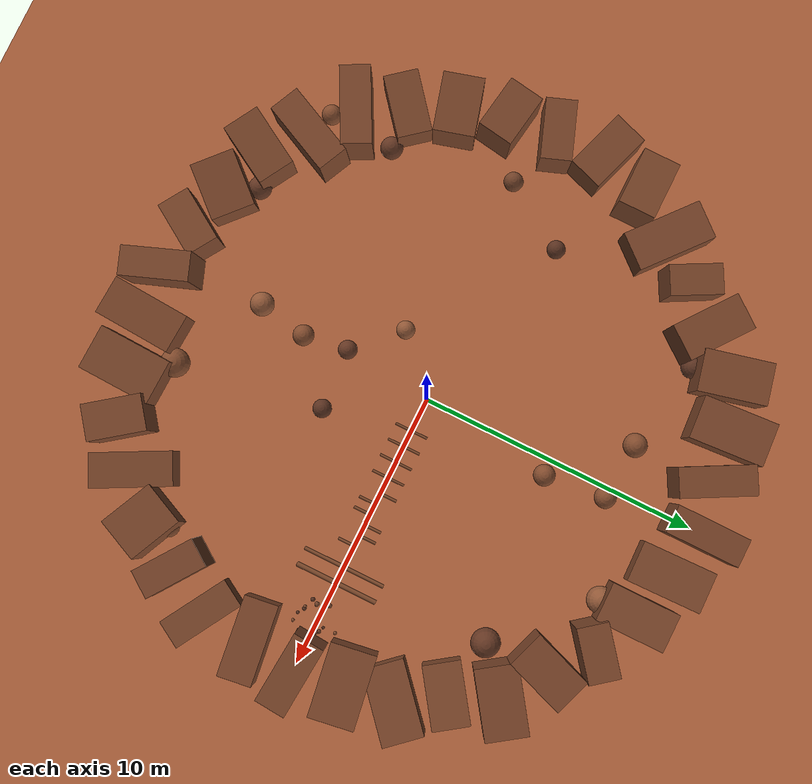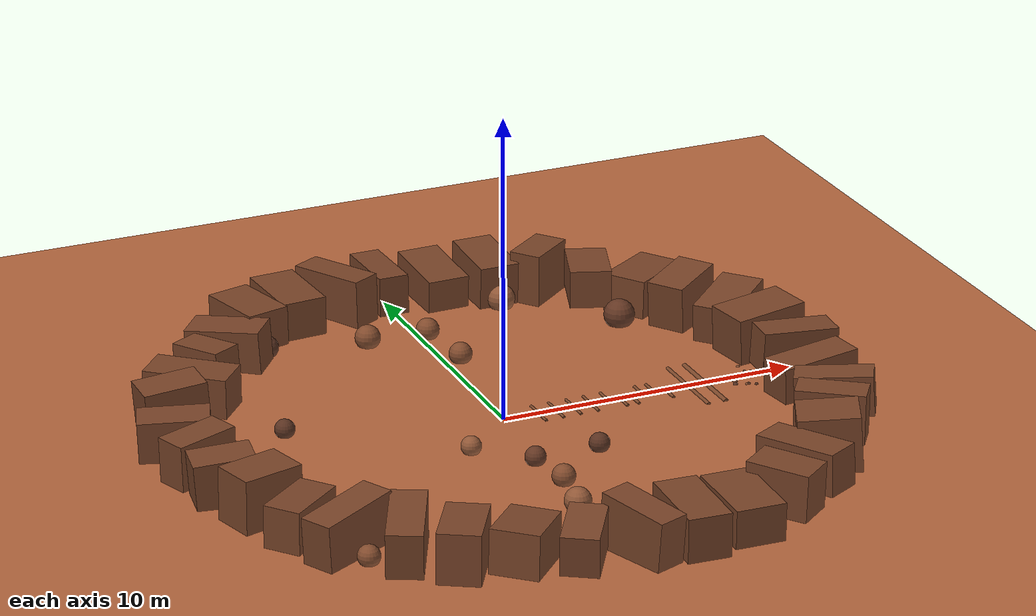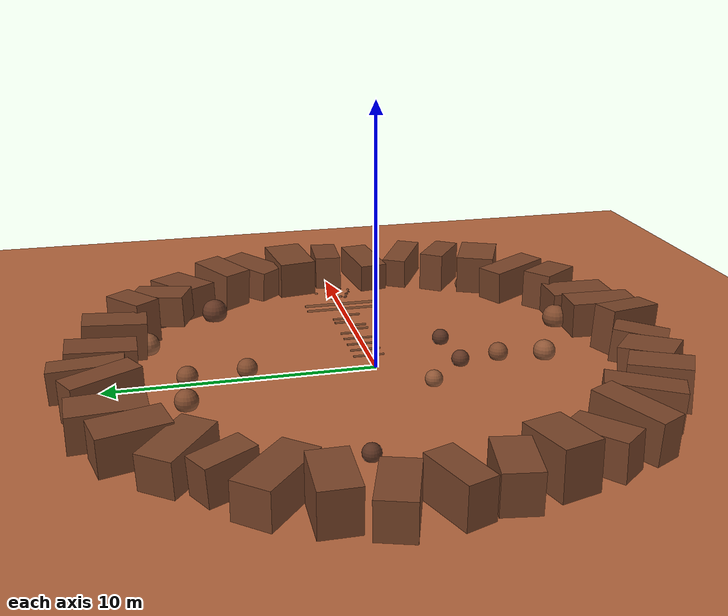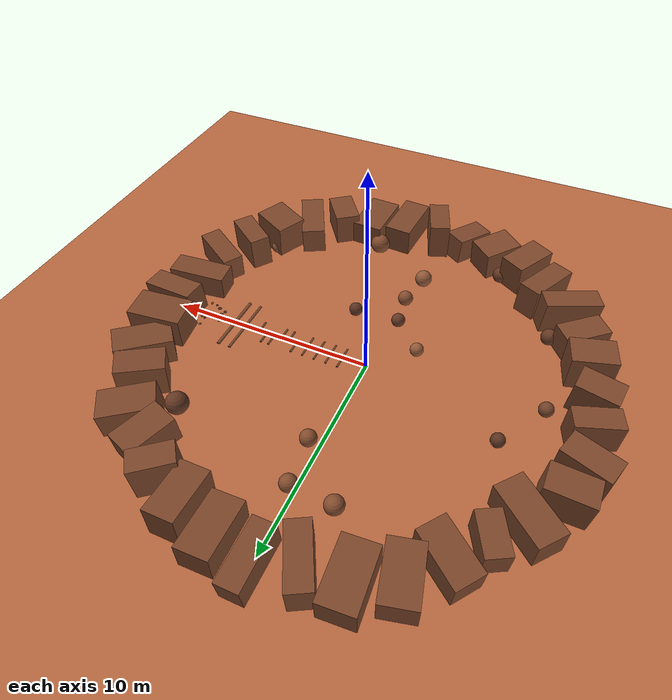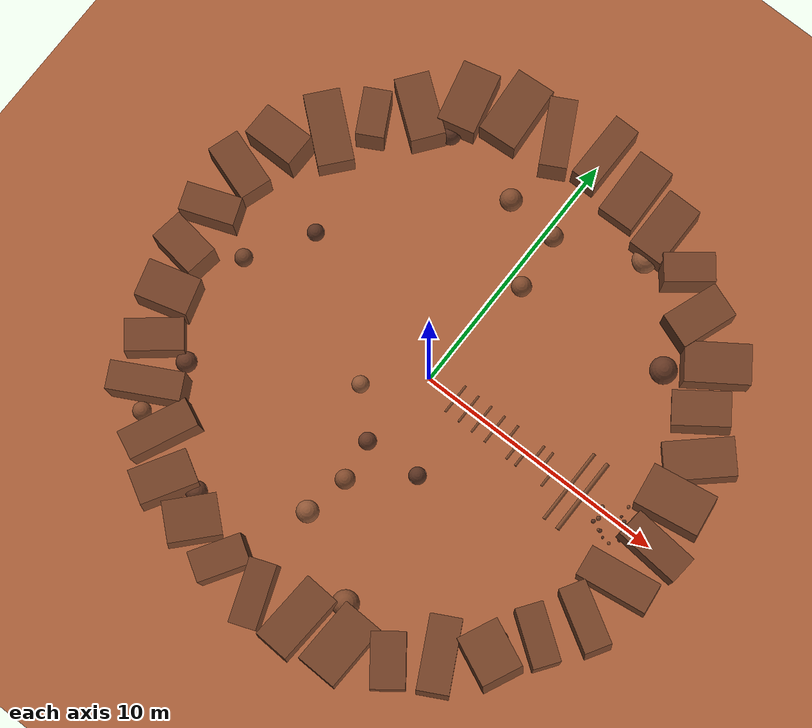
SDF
<?xml version="1.0"?>
<!-- Generated by gen_rough_world.py (seed 7) - edit the generator, not this file -->
<sdf version="1.8">
  <world name="rover_world">
    <physics name="1ms" type="ignored">
      <max_step_size>0.001</max_step_size>
      <real_time_factor>1.0</real_time_factor>
    </physics>
    <!-- DART (default). The rocker differential is enforced by the
         RockerDifferential system plugin, so bullet-featherstone (which
         cannot do controllable skid-steer) is no longer needed. -->
    <plugin filename="gz-sim-physics-system" name="gz::sim::systems::Physics"/>
    <plugin filename="gz-sim-user-commands-system" name="gz::sim::systems::UserCommands"/>
    <plugin filename="gz-sim-scene-broadcaster-system" name="gz::sim::systems::SceneBroadcaster"/>
    <plugin filename="gz-sim-sensors-system" name="gz::sim::systems::Sensors">
      <render_engine>ogre2</render_engine>
    </plugin>

    <scene>
      <ambient>0.5 0.38 0.3 1</ambient>
      <background>0.85 0.6 0.42 1</background>
    </scene>

    <light type="directional" name="sun">
      <cast_shadows>true</cast_shadows>
      <pose>0 0 10 0 0 0</pose>
      <diffuse>1.0 0.82 0.65 1</diffuse>
      <specular>0.3 0.25 0.2 1</specular>
      <direction>-0.4 0.2 -0.85</direction>
    </light>

    <model name="ground_plane">
      <static>true</static>
      <link name="link">
        <collision name="collision">
          <geometry><plane><normal>0 0 1</normal><size>60 60</size></plane></geometry>
        </collision>
        <visual name="visual">
          <geometry><plane><normal>0 0 1</normal><size>60 60</size></plane></geometry>
          <material><ambient>0.71 0.40 0.24 1</ambient><diffuse>0.71 0.40 0.24 1</diffuse></material>
        </visual>
      </link>
    </model>

    <model name="bumpA_0">
      <static>true</static>
      <pose>1.200 0.000 -0.015 1.5708 0 0</pose>
      <link name="link">
        <collision name="collision"><geometry><cylinder><radius>0.045</radius><length>1.200</length></cylinder></geometry></collision>
        <visual name="visual">
          <geometry><cylinder><radius>0.045</radius><length>1.200</length></cylinder></geometry>
          <material><ambient>0.50 0.29 0.17 1</ambient><diffuse>0.50 0.29 0.17 1</diffuse></material>
        </visual>
      </link>
    </model>
    <model name="bumpA_1">
      <static>true</static>
      <pose>1.800 0.000 -0.015 1.5708 0 0</pose>
      <link name="link">
        <collision name="collision"><geometry><cylinder><radius>0.045</radius><length>1.200</length></cylinder></geometry></collision>
        <visual name="visual">
          <geometry><cylinder><radius>0.045</radius><length>1.200</length></cylinder></geometry>
          <material><ambient>0.50 0.29 0.17 1</ambient><diffuse>0.50 0.29 0.17 1</diffuse></material>
        </visual>
      </link>
    </model>
    <model name="bumpA_2">
      <static>true</static>
      <pose>2.400 0.000 -0.015 1.5708 0 0</pose>
      <link name="link">
        <collision name="collision"><geometry><cylinder><radius>0.045</radius><length>1.200</length></cylinder></geometry></collision>
        <visual name="visual">
          <geometry><cylinder><radius>0.045</radius><length>1.200</length></cylinder></geometry>
          <material><ambient>0.50 0.29 0.17 1</ambient><diffuse>0.50 0.29 0.17 1</diffuse></material>
        </visual>
      </link>
    </model>
    <model name="bumpA_3">
      <static>true</static>
      <pose>3.000 0.000 -0.015 1.5708 0 0</pose>
      <link name="link">
        <collision name="collision"><geometry><cylinder><radius>0.045</radius><length>1.200</length></cylinder></geometry></collision>
        <visual name="visual">
          <geometry><cylinder><radius>0.045</radius><length>1.200</length></cylinder></geometry>
          <material><ambient>0.50 0.29 0.17 1</ambient><diffuse>0.50 0.29 0.17 1</diffuse></material>
        </visual>
      </link>
    </model>
    <model name="bumpB_L0">
      <static>true</static>
      <pose>3.600 0.300 -0.015 1.5708 0 0</pose>
      <link name="link">
        <collision name="collision"><geometry><cylinder><radius>0.050</radius><length>0.620</length></cylinder></geometry></collision>
        <visual name="visual">
          <geometry><cylinder><radius>0.050</radius><length>0.620</length></cylinder></geometry>
          <material><ambient>0.50 0.29 0.17 1</ambient><diffuse>0.50 0.29 0.17 1</diffuse></material>
        </visual>
      </link>
    </model>
    <model name="bumpB_L1">
      <static>true</static>
      <pose>4.800 0.300 -0.015 1.5708 0 0</pose>
      <link name="link">
        <collision name="collision"><geometry><cylinder><radius>0.050</radius><length>0.620</length></cylinder></geometry></collision>
        <visual name="visual">
          <geometry><cylinder><radius>0.050</radius><length>0.620</length></cylinder></geometry>
          <material><ambient>0.50 0.29 0.17 1</ambient><diffuse>0.50 0.29 0.17 1</diffuse></material>
        </visual>
      </link>
    </model>
    <model name="bumpB_L2">
      <static>true</static>
      <pose>5.200 0.300 -0.015 1.5708 0 0</pose>
      <link name="link">
        <collision name="collision"><geometry><cylinder><radius>0.050</radius><length>0.620</length></cylinder></geometry></collision>
        <visual name="visual">
          <geometry><cylinder><radius>0.050</radius><length>0.620</length></cylinder></geometry>
          <material><ambient>0.50 0.29 0.17 1</ambient><diffuse>0.50 0.29 0.17 1</diffuse></material>
        </visual>
      </link>
    </model>
    <model name="bumpB_R0">
      <static>true</static>
      <pose>4.000 -0.300 -0.015 1.5708 0 0</pose>
      <link name="link">
        <collision name="collision"><geometry><cylinder><radius>0.050</radius><length>0.620</length></cylinder></geometry></collision>
        <visual name="visual">
          <geometry><cylinder><radius>0.050</radius><length>0.620</length></cylinder></geometry>
          <material><ambient>0.50 0.29 0.17 1</ambient><diffuse>0.50 0.29 0.17 1</diffuse></material>
        </visual>
      </link>
    </model>
    <model name="bumpB_R1">
      <static>true</static>
      <pose>4.400 -0.300 -0.015 1.5708 0 0</pose>
      <link name="link">
        <collision name="collision"><geometry><cylinder><radius>0.050</radius><length>0.620</length></cylinder></geometry></collision>
        <visual name="visual">
          <geometry><cylinder><radius>0.050</radius><length>0.620</length></cylinder></geometry>
          <material><ambient>0.50 0.29 0.17 1</ambient><diffuse>0.50 0.29 0.17 1</diffuse></material>
        </visual>
      </link>
    </model>
    <model name="bumpB_R2">
      <static>true</static>
      <pose>5.600 -0.300 -0.015 1.5708 0 0</pose>
      <link name="link">
        <collision name="collision"><geometry><cylinder><radius>0.050</radius><length>0.620</length></cylinder></geometry></collision>
        <visual name="visual">
          <geometry><cylinder><radius>0.050</radius><length>0.620</length></cylinder></geometry>
          <material><ambient>0.50 0.29 0.17 1</ambient><diffuse>0.50 0.29 0.17 1</diffuse></material>
        </visual>
      </link>
    </model>
    <model name="log_0">
      <static>true</static>
      <pose>6.400 0.000 -0.040 1.5708 0 0</pose>
      <link name="link">
        <collision name="collision"><geometry><cylinder><radius>0.070</radius><length>3.000</length></cylinder></geometry></collision>
        <visual name="visual">
          <geometry><cylinder><radius>0.070</radius><length>3.000</length></cylinder></geometry>
          <material><ambient>0.50 0.29 0.17 1</ambient><diffuse>0.50 0.29 0.17 1</diffuse></material>
        </visual>
      </link>
    </model>
    <model name="log_1">
      <static>true</static>
      <pose>7.000 0.000 -0.050 1.5708 0 0</pose>
      <link name="link">
        <collision name="collision"><geometry><cylinder><radius>0.090</radius><length>3.000</length></cylinder></geometry></collision>
        <visual name="visual">
          <geometry><cylinder><radius>0.090</radius><length>3.000</length></cylinder></geometry>
          <material><ambient>0.50 0.29 0.17 1</ambient><diffuse>0.50 0.29 0.17 1</diffuse></material>
        </visual>
      </link>
    </model>
    <model name="pebble_0">
      <static>true</static>
      <pose>8.248 -0.594 -0.066 0 0 0</pose>
      <link name="link">
        <collision name="collision"><geometry><sphere><radius>0.083</radius></sphere></geometry></collision>
        <visual name="visual">
          <geometry><sphere><radius>0.083</radius></sphere></geometry>
          <material><ambient>0.36 0.20 0.13 1</ambient><diffuse>0.36 0.20 0.13 1</diffuse></material>
        </visual>
      </link>
    </model>
    <model name="pebble_1">
      <static>true</static>
      <pose>7.788 0.141 -0.076 0 0 0</pose>
      <link name="link">
        <collision name="collision"><geometry><sphere><radius>0.095</radius></sphere></geometry></collision>
        <visual name="visual">
          <geometry><sphere><radius>0.095</radius></sphere></geometry>
          <material><ambient>0.45 0.26 0.16 1</ambient><diffuse>0.45 0.26 0.16 1</diffuse></material>
        </visual>
      </link>
    </model>
    <model name="pebble_2">
      <static>true</static>
      <pose>8.467 -0.731 -0.030 0 0 0</pose>
      <link name="link">
        <collision name="collision"><geometry><sphere><radius>0.055</radius></sphere></geometry></collision>
        <visual name="visual">
          <geometry><sphere><radius>0.055</radius></sphere></geometry>
          <material><ambient>0.36 0.20 0.13 1</ambient><diffuse>0.36 0.20 0.13 1</diffuse></material>
        </visual>
      </link>
    </model>
    <model name="pebble_3">
      <static>true</static>
      <pose>7.848 -0.470 -0.045 0 0 0</pose>
      <link name="link">
        <collision name="collision"><geometry><sphere><radius>0.081</radius></sphere></geometry></collision>
        <visual name="visual">
          <geometry><sphere><radius>0.081</radius></sphere></geometry>
          <material><ambient>0.36 0.20 0.13 1</ambient><diffuse>0.36 0.20 0.13 1</diffuse></material>
        </visual>
      </link>
    </model>
    <model name="pebble_4">
      <static>true</static>
      <pose>8.771 -0.766 -0.033 0 0 0</pose>
      <link name="link">
        <collision name="collision"><geometry><sphere><radius>0.061</radius></sphere></geometry></collision>
        <visual name="visual">
          <geometry><sphere><radius>0.061</radius></sphere></geometry>
          <material><ambient>0.52 0.30 0.18 1</ambient><diffuse>0.52 0.30 0.18 1</diffuse></material>
        </visual>
      </link>
    </model>
    <model name="pebble_5">
      <static>true</static>
      <pose>8.179 -0.605 -0.034 0 0 0</pose>
      <link name="link">
        <collision name="collision"><geometry><sphere><radius>0.056</radius></sphere></geometry></collision>
        <visual name="visual">
          <geometry><sphere><radius>0.056</radius></sphere></geometry>
          <material><ambient>0.52 0.30 0.18 1</ambient><diffuse>0.52 0.30 0.18 1</diffuse></material>
        </visual>
      </link>
    </model>
    <model name="pebble_6">
      <static>true</static>
      <pose>7.806 0.121 -0.042 0 0 0</pose>
      <link name="link">
        <collision name="collision"><geometry><sphere><radius>0.059</radius></sphere></geometry></collision>
        <visual name="visual">
          <geometry><sphere><radius>0.059</radius></sphere></geometry>
          <material><ambient>0.45 0.26 0.16 1</ambient><diffuse>0.45 0.26 0.16 1</diffuse></material>
        </visual>
      </link>
    </model>
    <model name="pebble_7">
      <static>true</static>
      <pose>8.729 0.202 -0.048 0 0 0</pose>
      <link name="link">
        <collision name="collision"><geometry><sphere><radius>0.075</radius></sphere></geometry></collision>
        <visual name="visual">
          <geometry><sphere><radius>0.075</radius></sphere></geometry>
          <material><ambient>0.40 0.22 0.14 1</ambient><diffuse>0.40 0.22 0.14 1</diffuse></material>
        </visual>
      </link>
    </model>
    <model name="pebble_8">
      <static>true</static>
      <pose>8.531 0.720 -0.047 0 0 0</pose>
      <link name="link">
        <collision name="collision"><geometry><sphere><radius>0.068</radius></sphere></geometry></collision>
        <visual name="visual">
          <geometry><sphere><radius>0.068</radius></sphere></geometry>
          <material><ambient>0.52 0.30 0.18 1</ambient><diffuse>0.52 0.30 0.18 1</diffuse></material>
        </visual>
      </link>
    </model>
    <model name="pebble_9">
      <static>true</static>
      <pose>8.998 -0.435 -0.052 0 0 0</pose>
      <link name="link">
        <collision name="collision"><geometry><sphere><radius>0.079</radius></sphere></geometry></collision>
        <visual name="visual">
          <geometry><sphere><radius>0.079</radius></sphere></geometry>
          <material><ambient>0.40 0.22 0.14 1</ambient><diffuse>0.40 0.22 0.14 1</diffuse></material>
        </visual>
      </link>
    </model>
    <model name="pebble_10">
      <static>true</static>
      <pose>9.059 -0.361 -0.081 0 0 0</pose>
      <link name="link">
        <collision name="collision"><geometry><sphere><radius>0.099</radius></sphere></geometry></collision>
        <visual name="visual">
          <geometry><sphere><radius>0.099</radius></sphere></geometry>
          <material><ambient>0.58 0.35 0.22 1</ambient><diffuse>0.58 0.35 0.22 1</diffuse></material>
        </visual>
      </link>
    </model>
    <model name="pebble_11">
      <static>true</static>
      <pose>7.930 -0.269 -0.072 0 0 0</pose>
      <link name="link">
        <collision name="collision"><geometry><sphere><radius>0.097</radius></sphere></geometry></collision>
        <visual name="visual">
          <geometry><sphere><radius>0.097</radius></sphere></geometry>
          <material><ambient>0.45 0.26 0.16 1</ambient><diffuse>0.45 0.26 0.16 1</diffuse></material>
        </visual>
      </link>
    </model>
    <model name="pebble_12">
      <static>true</static>
      <pose>9.129 0.124 -0.072 0 0 0</pose>
      <link name="link">
        <collision name="collision"><geometry><sphere><radius>0.094</radius></sphere></geometry></collision>
        <visual name="visual">
          <geometry><sphere><radius>0.094</radius></sphere></geometry>
          <material><ambient>0.40 0.22 0.14 1</ambient><diffuse>0.40 0.22 0.14 1</diffuse></material>
        </visual>
      </link>
    </model>
    <model name="pebble_13">
      <static>true</static>
      <pose>8.789 0.136 -0.038 0 0 0</pose>
      <link name="link">
        <collision name="collision"><geometry><sphere><radius>0.073</radius></sphere></geometry></collision>
        <visual name="visual">
          <geometry><sphere><radius>0.073</radius></sphere></geometry>
          <material><ambient>0.40 0.22 0.14 1</ambient><diffuse>0.40 0.22 0.14 1</diffuse></material>
        </visual>
      </link>
    </model>
    <model name="pebble_14">
      <static>true</static>
      <pose>8.548 0.279 -0.022 0 0 0</pose>
      <link name="link">
        <collision name="collision"><geometry><sphere><radius>0.053</radius></sphere></geometry></collision>
        <visual name="visual">
          <geometry><sphere><radius>0.053</radius></sphere></geometry>
          <material><ambient>0.36 0.20 0.13 1</ambient><diffuse>0.36 0.20 0.13 1</diffuse></material>
        </visual>
      </link>
    </model>
    <model name="pebble_15">
      <static>true</static>
      <pose>9.586 0.547 -0.040 0 0 0</pose>
      <link name="link">
        <collision name="collision"><geometry><sphere><radius>0.064</radius></sphere></geometry></collision>
        <visual name="visual">
          <geometry><sphere><radius>0.064</radius></sphere></geometry>
          <material><ambient>0.40 0.22 0.14 1</ambient><diffuse>0.40 0.22 0.14 1</diffuse></material>
        </visual>
      </link>
    </model>
    <model name="scenery_0">
      <static>true</static>
      <pose>-8.116 -0.651 0.188 0 0 0</pose>
      <link name="link">
        <collision name="collision"><geometry><sphere><radius>0.342</radius></sphere></geometry></collision>
        <visual name="visual">
          <geometry><sphere><radius>0.342</radius></sphere></geometry>
          <material><ambient>0.45 0.26 0.16 1</ambient><diffuse>0.45 0.26 0.16 1</diffuse></material>
        </visual>
      </link>
    </model>
    <model name="scenery_1">
      <static>true</static>
      <pose>-0.107 -4.790 0.205 0 0 0</pose>
      <link name="link">
        <collision name="collision"><geometry><sphere><radius>0.372</radius></sphere></geometry></collision>
        <visual name="visual">
          <geometry><sphere><radius>0.372</radius></sphere></geometry>
          <material><ambient>0.52 0.30 0.18 1</ambient><diffuse>0.52 0.30 0.18 1</diffuse></material>
        </visual>
      </link>
    </model>
    <model name="scenery_2">
      <static>true</static>
      <pose>-1.736 7.086 0.233 0 0 0</pose>
      <link name="link">
        <collision name="collision"><geometry><sphere><radius>0.424</radius></sphere></geometry></collision>
        <visual name="visual">
          <geometry><sphere><radius>0.424</radius></sphere></geometry>
          <material><ambient>0.52 0.30 0.18 1</ambient><diffuse>0.52 0.30 0.18 1</diffuse></material>
        </visual>
      </link>
    </model>
    <model name="scenery_3">
      <static>true</static>
      <pose>6.518 5.428 0.284 0 0 0</pose>
      <link name="link">
        <collision name="collision"><geometry><sphere><radius>0.516</radius></sphere></geometry></collision>
        <visual name="visual">
          <geometry><sphere><radius>0.516</radius></sphere></geometry>
          <material><ambient>0.40 0.22 0.14 1</ambient><diffuse>0.40 0.22 0.14 1</diffuse></material>
        </visual>
      </link>
    </model>
    <model name="scenery_4">
      <static>true</static>
      <pose>3.509 8.270 0.259 0 0 0</pose>
      <link name="link">
        <collision name="collision"><geometry><sphere><radius>0.471</radius></sphere></geometry></collision>
        <visual name="visual">
          <geometry><sphere><radius>0.471</radius></sphere></geometry>
          <material><ambient>0.58 0.35 0.22 1</ambient><diffuse>0.58 0.35 0.22 1</diffuse></material>
        </visual>
      </link>
    </model>
    <model name="scenery_5">
      <static>true</static>
      <pose>7.781 -5.934 0.189 0 0 0</pose>
      <link name="link">
        <collision name="collision"><geometry><sphere><radius>0.344</radius></sphere></geometry></collision>
        <visual name="visual">
          <geometry><sphere><radius>0.344</radius></sphere></geometry>
          <material><ambient>0.52 0.30 0.18 1</ambient><diffuse>0.52 0.30 0.18 1</diffuse></material>
        </visual>
      </link>
    </model>
    <model name="scenery_6">
      <static>true</static>
      <pose>2.695 -8.295 0.279 0 0 0</pose>
      <link name="link">
        <collision name="collision"><geometry><sphere><radius>0.508</radius></sphere></geometry></collision>
        <visual name="visual">
          <geometry><sphere><radius>0.508</radius></sphere></geometry>
          <material><ambient>0.52 0.30 0.18 1</ambient><diffuse>0.52 0.30 0.18 1</diffuse></material>
        </visual>
      </link>
    </model>
    <model name="scenery_7">
      <static>true</static>
      <pose>-4.033 -8.430 0.223 0 0 0</pose>
      <link name="link">
        <collision name="collision"><geometry><sphere><radius>0.405</radius></sphere></geometry></collision>
        <visual name="visual">
          <geometry><sphere><radius>0.405</radius></sphere></geometry>
          <material><ambient>0.40 0.22 0.14 1</ambient><diffuse>0.40 0.22 0.14 1</diffuse></material>
        </visual>
      </link>
    </model>
    <model name="scenery_8">
      <static>true</static>
      <pose>1.867 -3.084 0.182 0 0 0</pose>
      <link name="link">
        <collision name="collision"><geometry><sphere><radius>0.331</radius></sphere></geometry></collision>
        <visual name="visual">
          <geometry><sphere><radius>0.331</radius></sphere></geometry>
          <material><ambient>0.36 0.20 0.13 1</ambient><diffuse>0.36 0.20 0.13 1</diffuse></material>
        </visual>
      </link>
    </model>
    <model name="scenery_9">
      <static>true</static>
      <pose>6.307 7.682 0.259 0 0 0</pose>
      <link name="link">
        <collision name="collision"><geometry><sphere><radius>0.470</radius></sphere></geometry></collision>
        <visual name="visual">
          <geometry><sphere><radius>0.470</radius></sphere></geometry>
          <material><ambient>0.36 0.20 0.13 1</ambient><diffuse>0.36 0.20 0.13 1</diffuse></material>
        </visual>
      </link>
    </model>
    <model name="scenery_10">
      <static>true</static>
      <pose>-1.830 -1.717 0.179 0 0 0</pose>
      <link name="link">
        <collision name="collision"><geometry><sphere><radius>0.326</radius></sphere></geometry></collision>
        <visual name="visual">
          <geometry><sphere><radius>0.326</radius></sphere></geometry>
          <material><ambient>0.58 0.35 0.22 1</ambient><diffuse>0.58 0.35 0.22 1</diffuse></material>
        </visual>
      </link>
    </model>
    <model name="scenery_11">
      <static>true</static>
      <pose>-7.442 -7.355 0.194 0 0 0</pose>
      <link name="link">
        <collision name="collision"><geometry><sphere><radius>0.352</radius></sphere></geometry></collision>
        <visual name="visual">
          <geometry><sphere><radius>0.352</radius></sphere></geometry>
          <material><ambient>0.52 0.30 0.18 1</ambient><diffuse>0.52 0.30 0.18 1</diffuse></material>
        </visual>
      </link>
    </model>
    <model name="scenery_12">
      <static>true</static>
      <pose>-6.631 1.712 0.179 0 0 0</pose>
      <link name="link">
        <collision name="collision"><geometry><sphere><radius>0.326</radius></sphere></geometry></collision>
        <visual name="visual">
          <geometry><sphere><radius>0.326</radius></sphere></geometry>
          <material><ambient>0.36 0.20 0.13 1</ambient><diffuse>0.36 0.20 0.13 1</diffuse></material>
        </visual>
      </link>
    </model>
    <model name="scenery_13">
      <static>true</static>
      <pose>-5.928 -6.775 0.215 0 0 0</pose>
      <link name="link">
        <collision name="collision"><geometry><sphere><radius>0.391</radius></sphere></geometry></collision>
        <visual name="visual">
          <geometry><sphere><radius>0.391</radius></sphere></geometry>
          <material><ambient>0.45 0.26 0.16 1</ambient><diffuse>0.45 0.26 0.16 1</diffuse></material>
        </visual>
      </link>
    </model>
    <model name="scenery_14">
      <static>true</static>
      <pose>-7.305 -4.965 0.217 0 0 0</pose>
      <link name="link">
        <collision name="collision"><geometry><sphere><radius>0.394</radius></sphere></geometry></collision>
        <visual name="visual">
          <geometry><sphere><radius>0.394</radius></sphere></geometry>
          <material><ambient>0.40 0.22 0.14 1</ambient><diffuse>0.40 0.22 0.14 1</diffuse></material>
        </visual>
      </link>
    </model>
    <model name="scenery_15">
      <static>true</static>
      <pose>-0.439 -6.539 0.232 0 0 0</pose>
      <link name="link">
        <collision name="collision"><geometry><sphere><radius>0.422</radius></sphere></geometry></collision>
        <visual name="visual">
          <geometry><sphere><radius>0.422</radius></sphere></geometry>
          <material><ambient>0.58 0.35 0.22 1</ambient><diffuse>0.58 0.35 0.22 1</diffuse></material>
        </visual>
      </link>
    </model>
    <model name="scenery_16">
      <static>true</static>
      <pose>-0.333 -3.199 0.185 0 0 0</pose>
      <link name="link">
        <collision name="collision"><geometry><sphere><radius>0.336</radius></sphere></geometry></collision>
        <visual name="visual">
          <geometry><sphere><radius>0.336</radius></sphere></geometry>
          <material><ambient>0.40 0.22 0.14 1</ambient><diffuse>0.40 0.22 0.14 1</diffuse></material>
        </visual>
      </link>
    </model>
    <model name="scenery_17">
      <static>true</static>
      <pose>-5.011 7.684 0.215 0 0 0</pose>
      <link name="link">
        <collision name="collision"><geometry><sphere><radius>0.390</radius></sphere></geometry></collision>
        <visual name="visual">
          <geometry><sphere><radius>0.390</radius></sphere></geometry>
          <material><ambient>0.36 0.20 0.13 1</ambient><diffuse>0.36 0.20 0.13 1</diffuse></material>
        </visual>
      </link>
    </model>
    <model name="scenery_18">
      <static>true</static>
      <pose>0.313 6.940 0.214 0 0 0</pose>
      <link name="link">
        <collision name="collision"><geometry><sphere><radius>0.389</radius></sphere></geometry></collision>
        <visual name="visual">
          <geometry><sphere><radius>0.389</radius></sphere></geometry>
          <material><ambient>0.52 0.30 0.18 1</ambient><diffuse>0.52 0.30 0.18 1</diffuse></material>
        </visual>
      </link>
    </model>
    <model name="scenery_19">
      <static>true</static>
      <pose>0.554 4.744 0.210 0 0 0</pose>
      <link name="link">
        <collision name="collision"><geometry><sphere><radius>0.382</radius></sphere></geometry></collision>
        <visual name="visual">
          <geometry><sphere><radius>0.382</radius></sphere></geometry>
          <material><ambient>0.52 0.30 0.18 1</ambient><diffuse>0.52 0.30 0.18 1</diffuse></material>
        </visual>
      </link>
    </model>
    <model name="rim_0">
      <static>true</static>
      <pose>10.168 0.000 0.737 0.000 0.049 -0.079</pose>
      <link name="link">
        <collision name="collision"><geometry><box><size>2.558 1.117 1.392</size></box></geometry></collision>
        <visual name="visual">
          <geometry><box><size>2.558 1.117 1.392</size></box></geometry>
          <material><ambient>0.48 0.27 0.16 1</ambient><diffuse>0.48 0.27 0.16 1</diffuse></material>
        </visual>
      </link>
    </model>
    <model name="rim_1">
      <static>true</static>
      <pose>9.769 1.723 0.648 0.000 -0.049 0.152</pose>
      <link name="link">
        <collision name="collision"><geometry><box><size>2.531 1.594 1.832</size></box></geometry></collision>
        <visual name="visual">
          <geometry><box><size>2.531 1.594 1.832</size></box></geometry>
          <material><ambient>0.48 0.27 0.16 1</ambient><diffuse>0.48 0.27 0.16 1</diffuse></material>
        </visual>
      </link>
    </model>
    <model name="rim_2">
      <static>true</static>
      <pose>9.550 3.476 0.603 0.000 -0.067 0.729</pose>
      <link name="link">
        <collision name="collision"><geometry><box><size>2.609 1.434 1.480</size></box></geometry></collision>
        <visual name="visual">
          <geometry><box><size>2.609 1.434 1.480</size></box></geometry>
          <material><ambient>0.48 0.27 0.16 1</ambient><diffuse>0.48 0.27 0.16 1</diffuse></material>
        </visual>
      </link>
    </model>
    <model name="rim_3">
      <static>true</static>
      <pose>8.540 4.931 0.641 0.000 -0.080 0.612</pose>
      <link name="link">
        <collision name="collision"><geometry><box><size>2.138 1.290 1.988</size></box></geometry></collision>
        <visual name="visual">
          <geometry><box><size>2.138 1.290 1.988</size></box></geometry>
          <material><ambient>0.48 0.27 0.16 1</ambient><diffuse>0.48 0.27 0.16 1</diffuse></material>
        </visual>
      </link>
    </model>
    <model name="rim_4">
      <static>true</static>
      <pose>7.925 6.650 0.603 0.000 0.034 0.609</pose>
      <link name="link">
        <collision name="collision"><geometry><box><size>2.443 1.501 1.296</size></box></geometry></collision>
        <visual name="visual">
          <geometry><box><size>2.443 1.501 1.296</size></box></geometry>
          <material><ambient>0.48 0.27 0.16 1</ambient><diffuse>0.48 0.27 0.16 1</diffuse></material>
        </visual>
      </link>
    </model>
    <model name="rim_5">
      <static>true</static>
      <pose>6.376 7.599 0.767 0.000 0.035 1.230</pose>
      <link name="link">
        <collision name="collision"><geometry><box><size>2.234 1.382 1.269</size></box></geometry></collision>
        <visual name="visual">
          <geometry><box><size>2.234 1.382 1.269</size></box></geometry>
          <material><ambient>0.48 0.27 0.16 1</ambient><diffuse>0.48 0.27 0.16 1</diffuse></material>
        </visual>
      </link>
    </model>
    <model name="rim_6">
      <static>true</static>
      <pose>5.039 8.728 0.723 0.000 0.015 0.669</pose>
      <link name="link">
        <collision name="collision"><geometry><box><size>1.885 1.095 1.994</size></box></geometry></collision>
        <visual name="visual">
          <geometry><box><size>1.885 1.095 1.994</size></box></geometry>
          <material><ambient>0.48 0.27 0.16 1</ambient><diffuse>0.48 0.27 0.16 1</diffuse></material>
        </visual>
      </link>
    </model>
    <model name="rim_7">
      <static>true</static>
      <pose>3.447 9.471 0.697 0.000 -0.055 1.572</pose>
      <link name="link">
        <collision name="collision"><geometry><box><size>2.412 1.358 1.579</size></box></geometry></collision>
        <visual name="visual">
          <geometry><box><size>2.412 1.358 1.579</size></box></geometry>
          <material><ambient>0.48 0.27 0.16 1</ambient><diffuse>0.48 0.27 0.16 1</diffuse></material>
        </visual>
      </link>
    </model>
    <model name="rim_8">
      <static>true</static>
      <pose>1.759 9.975 0.506 0.000 -0.058 1.596</pose>
      <link name="link">
        <collision name="collision"><geometry><box><size>2.599 1.436 1.282</size></box></geometry></collision>
        <visual name="visual">
          <geometry><box><size>2.599 1.436 1.282</size></box></geometry>
          <material><ambient>0.48 0.27 0.16 1</ambient><diffuse>0.48 0.27 0.16 1</diffuse></material>
        </visual>
      </link>
    </model>
    <model name="rim_9">
      <static>true</static>
      <pose>0.000 10.392 0.558 0.000 0.042 1.572</pose>
      <link name="link">
        <collision name="collision"><geometry><box><size>2.674 1.017 1.370</size></box></geometry></collision>
        <visual name="visual">
          <geometry><box><size>2.674 1.017 1.370</size></box></geometry>
          <material><ambient>0.48 0.27 0.16 1</ambient><diffuse>0.48 0.27 0.16 1</diffuse></material>
        </visual>
      </link>
    </model>
    <model name="rim_10">
      <static>true</static>
      <pose>-1.736 9.844 0.663 0.000 0.026 2.063</pose>
      <link name="link">
        <collision name="collision"><geometry><box><size>2.634 1.037 1.792</size></box></geometry></collision>
        <visual name="visual">
          <geometry><box><size>2.634 1.037 1.792</size></box></geometry>
          <material><ambient>0.48 0.27 0.16 1</ambient><diffuse>0.48 0.27 0.16 1</diffuse></material>
        </visual>
      </link>
    </model>
    <model name="rim_11">
      <static>true</static>
      <pose>-3.519 9.669 0.655 0.000 0.002 1.641</pose>
      <link name="link">
        <collision name="collision"><geometry><box><size>2.627 1.527 1.305</size></box></geometry></collision>
        <visual name="visual">
          <geometry><box><size>2.627 1.527 1.305</size></box></geometry>
          <material><ambient>0.48 0.27 0.16 1</ambient><diffuse>0.48 0.27 0.16 1</diffuse></material>
        </visual>
      </link>
    </model>
    <model name="rim_12">
      <static>true</static>
      <pose>-5.162 8.941 0.733 0.000 0.019 1.808</pose>
      <link name="link">
        <collision name="collision"><geometry><box><size>2.409 1.466 1.320</size></box></geometry></collision>
        <visual name="visual">
          <geometry><box><size>2.409 1.466 1.320</size></box></geometry>
          <material><ambient>0.48 0.27 0.16 1</ambient><diffuse>0.48 0.27 0.16 1</diffuse></material>
        </visual>
      </link>
    </model>
    <model name="rim_13">
      <static>true</static>
      <pose>-6.346 7.563 0.519 0.000 0.061 2.490</pose>
      <link name="link">
        <collision name="collision"><geometry><box><size>2.482 1.318 1.586</size></box></geometry></collision>
        <visual name="visual">
          <geometry><box><size>2.482 1.318 1.586</size></box></geometry>
          <material><ambient>0.48 0.27 0.16 1</ambient><diffuse>0.48 0.27 0.16 1</diffuse></material>
        </visual>
      </link>
    </model>
    <model name="rim_14">
      <static>true</static>
      <pose>-7.533 6.321 0.557 0.000 0.063 2.066</pose>
      <link name="link">
        <collision name="collision"><geometry><box><size>1.842 1.059 1.562</size></box></geometry></collision>
        <visual name="visual">
          <geometry><box><size>1.842 1.059 1.562</size></box></geometry>
          <material><ambient>0.48 0.27 0.16 1</ambient><diffuse>0.48 0.27 0.16 1</diffuse></material>
        </visual>
      </link>
    </model>
    <model name="rim_15">
      <static>true</static>
      <pose>-8.520 4.919 0.598 0.000 0.001 2.440</pose>
      <link name="link">
        <collision name="collision"><geometry><box><size>2.773 1.364 1.360</size></box></geometry></collision>
        <visual name="visual">
          <geometry><box><size>2.773 1.364 1.360</size></box></geometry>
          <material><ambient>0.48 0.27 0.16 1</ambient><diffuse>0.48 0.27 0.16 1</diffuse></material>
        </visual>
      </link>
    </model>
    <model name="rim_16">
      <static>true</static>
      <pose>-9.664 3.517 0.652 0.000 0.068 3.135</pose>
      <link name="link">
        <collision name="collision"><geometry><box><size>2.048 1.314 1.901</size></box></geometry></collision>
        <visual name="visual">
          <geometry><box><size>2.048 1.314 1.901</size></box></geometry>
          <material><ambient>0.48 0.27 0.16 1</ambient><diffuse>0.48 0.27 0.16 1</diffuse></material>
        </visual>
      </link>
    </model>
    <model name="rim_17">
      <static>true</static>
      <pose>-10.179 1.795 0.561 0.000 0.027 2.820</pose>
      <link name="link">
        <collision name="collision"><geometry><box><size>2.248 1.250 1.514</size></box></geometry></collision>
        <visual name="visual">
          <geometry><box><size>2.248 1.250 1.514</size></box></geometry>
          <material><ambient>0.48 0.27 0.16 1</ambient><diffuse>0.48 0.27 0.16 1</diffuse></material>
        </visual>
      </link>
    </model>
    <model name="rim_18">
      <static>true</static>
      <pose>-10.057 0.000 0.564 0.000 0.023 3.493</pose>
      <link name="link">
        <collision name="collision"><geometry><box><size>2.103 1.073 1.822</size></box></geometry></collision>
        <visual name="visual">
          <geometry><box><size>2.103 1.073 1.822</size></box></geometry>
          <material><ambient>0.48 0.27 0.16 1</ambient><diffuse>0.48 0.27 0.16 1</diffuse></material>
        </visual>
      </link>
    </model>
    <model name="rim_19">
      <static>true</static>
      <pose>-9.867 -1.740 0.576 0.000 0.062 2.991</pose>
      <link name="link">
        <collision name="collision"><geometry><box><size>1.937 1.281 1.797</size></box></geometry></collision>
        <visual name="visual">
          <geometry><box><size>1.937 1.281 1.797</size></box></geometry>
          <material><ambient>0.48 0.27 0.16 1</ambient><diffuse>0.48 0.27 0.16 1</diffuse></material>
        </visual>
      </link>
    </model>
    <model name="rim_20">
      <static>true</static>
      <pose>-9.301 -3.385 0.700 0.000 -0.013 3.414</pose>
      <link name="link">
        <collision name="collision"><geometry><box><size>2.024 1.424 1.995</size></box></geometry></collision>
        <visual name="visual">
          <geometry><box><size>2.024 1.424 1.995</size></box></geometry>
          <material><ambient>0.48 0.27 0.16 1</ambient><diffuse>0.48 0.27 0.16 1</diffuse></material>
        </visual>
      </link>
    </model>
    <model name="rim_21">
      <static>true</static>
      <pose>-8.672 -5.007 0.528 0.000 -0.019 3.828</pose>
      <link name="link">
        <collision name="collision"><geometry><box><size>2.166 1.203 1.567</size></box></geometry></collision>
        <visual name="visual">
          <geometry><box><size>2.166 1.203 1.567</size></box></geometry>
          <material><ambient>0.48 0.27 0.16 1</ambient><diffuse>0.48 0.27 0.16 1</diffuse></material>
        </visual>
      </link>
    </model>
    <model name="rim_22">
      <static>true</static>
      <pose>-7.745 -6.499 0.589 0.000 0.060 3.623</pose>
      <link name="link">
        <collision name="collision"><geometry><box><size>2.761 1.068 1.935</size></box></geometry></collision>
        <visual name="visual">
          <geometry><box><size>2.761 1.068 1.935</size></box></geometry>
          <material><ambient>0.48 0.27 0.16 1</ambient><diffuse>0.48 0.27 0.16 1</diffuse></material>
        </visual>
      </link>
    </model>
    <model name="rim_23">
      <static>true</static>
      <pose>-6.332 -7.546 0.582 0.000 0.056 4.270</pose>
      <link name="link">
        <collision name="collision"><geometry><box><size>2.706 1.109 1.805</size></box></geometry></collision>
        <visual name="visual">
          <geometry><box><size>2.706 1.109 1.805</size></box></geometry>
          <material><ambient>0.48 0.27 0.16 1</ambient><diffuse>0.48 0.27 0.16 1</diffuse></material>
        </visual>
      </link>
    </model>
    <model name="rim_24">
      <static>true</static>
      <pose>-5.103 -8.838 0.784 0.000 -0.028 4.184</pose>
      <link name="link">
        <collision name="collision"><geometry><box><size>2.206 1.322 1.612</size></box></geometry></collision>
        <visual name="visual">
          <geometry><box><size>2.206 1.322 1.612</size></box></geometry>
          <material><ambient>0.48 0.27 0.16 1</ambient><diffuse>0.48 0.27 0.16 1</diffuse></material>
        </visual>
      </link>
    </model>
    <model name="rim_25">
      <static>true</static>
      <pose>-3.409 -9.366 0.740 0.000 -0.066 3.977</pose>
      <link name="link">
        <collision name="collision"><geometry><box><size>1.983 1.537 1.415</size></box></geometry></collision>
        <visual name="visual">
          <geometry><box><size>1.983 1.537 1.415</size></box></geometry>
          <material><ambient>0.48 0.27 0.16 1</ambient><diffuse>0.48 0.27 0.16 1</diffuse></material>
        </visual>
      </link>
    </model>
    <model name="rim_26">
      <static>true</static>
      <pose>-1.729 -9.805 0.682 0.000 0.079 4.147</pose>
      <link name="link">
        <collision name="collision"><geometry><box><size>2.022 1.159 1.297</size></box></geometry></collision>
        <visual name="visual">
          <geometry><box><size>2.022 1.159 1.297</size></box></geometry>
          <material><ambient>0.48 0.27 0.16 1</ambient><diffuse>0.48 0.27 0.16 1</diffuse></material>
        </visual>
      </link>
    </model>
    <model name="rim_27">
      <static>true</static>
      <pose>-0.000 -10.051 0.775 0.000 0.075 5.063</pose>
      <link name="link">
        <collision name="collision"><geometry><box><size>2.422 1.026 1.768</size></box></geometry></collision>
        <visual name="visual">
          <geometry><box><size>2.422 1.026 1.768</size></box></geometry>
          <material><ambient>0.48 0.27 0.16 1</ambient><diffuse>0.48 0.27 0.16 1</diffuse></material>
        </visual>
      </link>
    </model>
    <model name="rim_28">
      <static>true</static>
      <pose>1.729 -9.806 0.554 0.000 -0.009 4.652</pose>
      <link name="link">
        <collision name="collision"><geometry><box><size>2.732 1.377 1.625</size></box></geometry></collision>
        <visual name="visual">
          <geometry><box><size>2.732 1.377 1.625</size></box></geometry>
          <material><ambient>0.48 0.27 0.16 1</ambient><diffuse>0.48 0.27 0.16 1</diffuse></material>
        </visual>
      </link>
    </model>
    <model name="rim_29">
      <static>true</static>
      <pose>3.490 -9.588 0.581 0.000 0.001 4.676</pose>
      <link name="link">
        <collision name="collision"><geometry><box><size>2.604 1.597 1.230</size></box></geometry></collision>
        <visual name="visual">
          <geometry><box><size>2.604 1.597 1.230</size></box></geometry>
          <material><ambient>0.48 0.27 0.16 1</ambient><diffuse>0.48 0.27 0.16 1</diffuse></material>
        </visual>
      </link>
    </model>
    <model name="rim_30">
      <static>true</static>
      <pose>5.193 -8.995 0.654 0.000 0.025 5.356</pose>
      <link name="link">
        <collision name="collision"><geometry><box><size>2.046 1.268 1.727</size></box></geometry></collision>
        <visual name="visual">
          <geometry><box><size>2.046 1.268 1.727</size></box></geometry>
          <material><ambient>0.48 0.27 0.16 1</ambient><diffuse>0.48 0.27 0.16 1</diffuse></material>
        </visual>
      </link>
    </model>
    <model name="rim_31">
      <static>true</static>
      <pose>6.510 -7.758 0.767 0.000 -0.048 5.194</pose>
      <link name="link">
        <collision name="collision"><geometry><box><size>2.770 1.185 1.372</size></box></geometry></collision>
        <visual name="visual">
          <geometry><box><size>2.770 1.185 1.372</size></box></geometry>
          <material><ambient>0.48 0.27 0.16 1</ambient><diffuse>0.48 0.27 0.16 1</diffuse></material>
        </visual>
      </link>
    </model>
    <model name="rim_32">
      <static>true</static>
      <pose>7.913 -6.639 0.719 0.000 -0.078 5.855</pose>
      <link name="link">
        <collision name="collision"><geometry><box><size>1.940 1.594 1.986</size></box></geometry></collision>
        <visual name="visual">
          <geometry><box><size>1.940 1.594 1.986</size></box></geometry>
          <material><ambient>0.48 0.27 0.16 1</ambient><diffuse>0.48 0.27 0.16 1</diffuse></material>
        </visual>
      </link>
    </model>
    <model name="rim_33">
      <static>true</static>
      <pose>8.812 -5.088 0.764 0.000 0.001 5.664</pose>
      <link name="link">
        <collision name="collision"><geometry><box><size>2.231 1.033 1.732</size></box></geometry></collision>
        <visual name="visual">
          <geometry><box><size>2.231 1.033 1.732</size></box></geometry>
          <material><ambient>0.48 0.27 0.16 1</ambient><diffuse>0.48 0.27 0.16 1</diffuse></material>
        </visual>
      </link>
    </model>
    <model name="rim_34">
      <static>true</static>
      <pose>9.756 -3.551 0.680 0.000 -0.079 5.749</pose>
      <link name="link">
        <collision name="collision"><geometry><box><size>2.493 1.027 1.348</size></box></geometry></collision>
        <visual name="visual">
          <geometry><box><size>2.493 1.027 1.348</size></box></geometry>
          <material><ambient>0.48 0.27 0.16 1</ambient><diffuse>0.48 0.27 0.16 1</diffuse></material>
        </visual>
      </link>
    </model>
    <model name="rim_35">
      <static>true</static>
      <pose>9.866 -1.740 0.599 0.000 -0.045 6.415</pose>
      <link name="link">
        <collision name="collision"><geometry><box><size>2.785 1.194 1.228</size></box></geometry></collision>
        <visual name="visual">
          <geometry><box><size>2.785 1.194 1.228</size></box></geometry>
          <material><ambient>0.48 0.27 0.16 1</ambient><diffuse>0.48 0.27 0.16 1</diffuse></material>
        </visual>
      </link>
    </model>
  </world>
</sdf>
